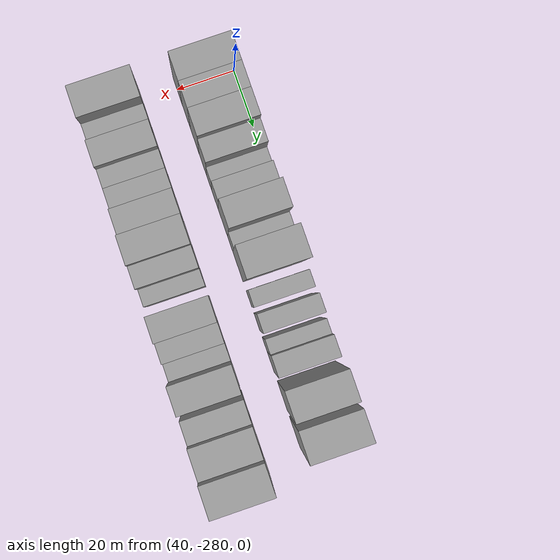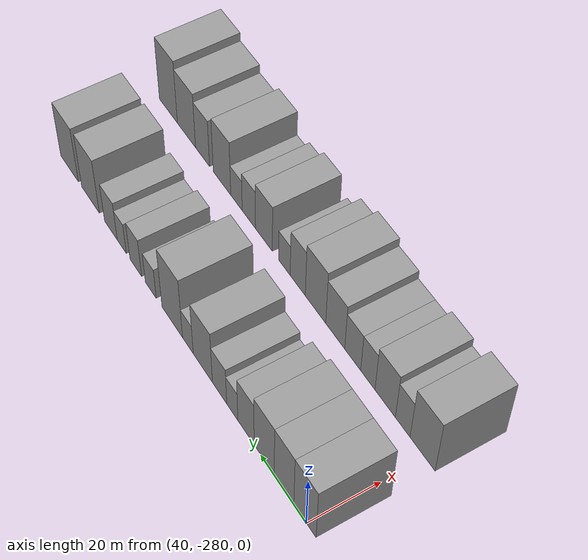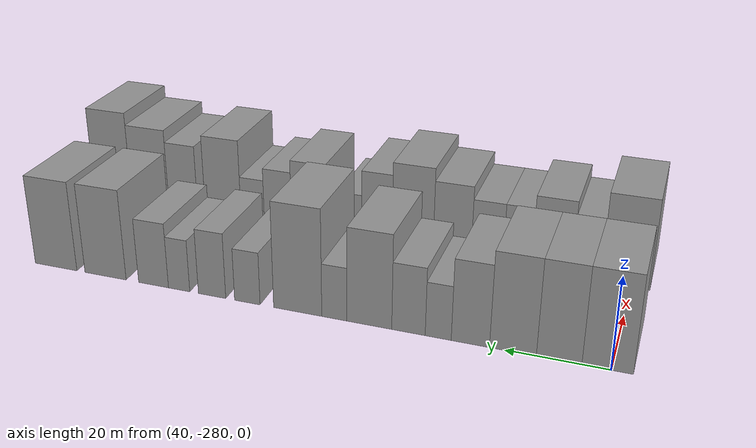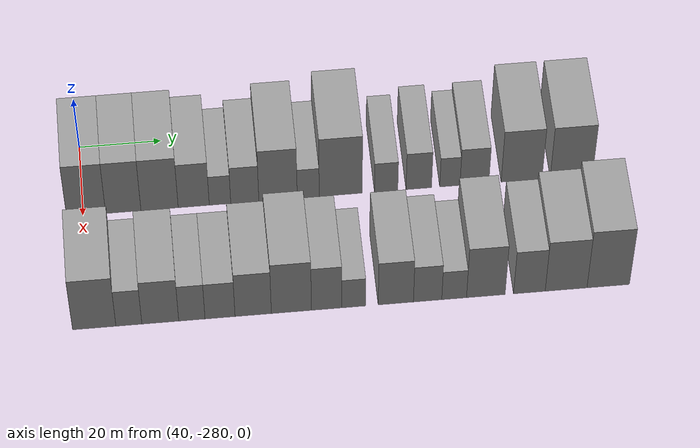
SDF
<sdf version="1.6">
 <world name="default">
  <model name="building_1">
   <static>1</static>
   <pose>50.0000 -279.2888 0 0.000000 0.000000 0.000000</pose>
   <link name="link">
    <pose>0 0 10.50 0 0 0</pose>
    <collision name="collision"><geometry><box><size>20.0000 9.4225 21.0000</size></box></geometry></collision>
    <visual name="visual">
     <cast_shadows>0</cast_shadows>
     <geometry><box><size>20.0000 9.4225 21.0000</size></box></geometry>
     <material>
      <script>
       <uri>model://grey_wall/materials/scripts</uri>
       <uri>model://grey_wall/materials/textures</uri>
       <name>vrc/grey_wall</name>
      </script>
     </material>
    </visual>
   </link>
  </model>
  <model name="building_2">
   <static>1</static>
   <pose>50.0000 -270.3135 0 0.000000 0.000000 0.000000</pose>
   <link name="link">
    <pose>0 0 10.50 0 0 0</pose>
    <collision name="collision"><geometry><box><size>20.0000 8.5280 21.0000</size></box></geometry></collision>
    <visual name="visual">
     <cast_shadows>0</cast_shadows>
     <geometry><box><size>20.0000 8.5280 21.0000</size></box></geometry>
     <material>
      <script>
       <uri>model://grey_wall/materials/scripts</uri>
       <uri>model://grey_wall/materials/textures</uri>
       <name>vrc/grey_wall</name>
      </script>
     </material>
    </visual>
   </link>
  </model>
  <model name="building_3">
   <static>1</static>
   <pose>50.0000 -261.5503 0 0.000000 0.000000 0.000000</pose>
   <link name="link">
    <pose>0 0 10.50 0 0 0</pose>
    <collision name="collision"><geometry><box><size>20.0000 8.9983 21.0000</size></box></geometry></collision>
    <visual name="visual">
     <cast_shadows>0</cast_shadows>
     <geometry><box><size>20.0000 8.9983 21.0000</size></box></geometry>
     <material>
      <script>
       <uri>model://grey_wall/materials/scripts</uri>
       <uri>model://grey_wall/materials/textures</uri>
       <name>vrc/grey_wall</name>
      </script>
     </material>
    </visual>
   </link>
  </model>
  <model name="building_4">
   <static>1</static>
   <pose>50.0000 -253.2903 0 0.000000 0.000000 0.000000</pose>
   <link name="link">
    <pose>0 0 9.00 0 0 0</pose>
    <collision name="collision"><geometry><box><size>20.0000 7.5218 18.0000</size></box></geometry></collision>
    <visual name="visual">
     <cast_shadows>0</cast_shadows>
     <geometry><box><size>20.0000 7.5218 18.0000</size></box></geometry>
     <material>
      <script>
       <uri>model://grey_wall/materials/scripts</uri>
       <uri>model://grey_wall/materials/textures</uri>
       <name>vrc/grey_wall</name>
      </script>
     </material>
    </visual>
   </link>
  </model>
  <model name="building_5">
   <static>1</static>
   <pose>50.0000 -246.9302 0 0.000000 0.000000 0.000000</pose>
   <link name="link">
    <pose>0 0 6.00 0 0 0</pose>
    <collision name="collision"><geometry><box><size>20.0000 5.1983 12.0000</size></box></geometry></collision>
    <visual name="visual">
     <cast_shadows>0</cast_shadows>
     <geometry><box><size>20.0000 5.1983 12.0000</size></box></geometry>
     <material>
      <script>
       <uri>model://grey_wall/materials/scripts</uri>
       <uri>model://grey_wall/materials/textures</uri>
       <name>vrc/grey_wall</name>
      </script>
     </material>
    </visual>
   </link>
  </model>
  <model name="building_6">
   <static>1</static>
   <pose>50.0000 -240.9250 0 0.000000 0.000000 0.000000</pose>
   <link name="link">
    <pose>0 0 7.50 0 0 0</pose>
    <collision name="collision"><geometry><box><size>20.0000 6.8121 15.0000</size></box></geometry></collision>
    <visual name="visual">
     <cast_shadows>0</cast_shadows>
     <geometry><box><size>20.0000 6.8121 15.0000</size></box></geometry>
     <material>
      <script>
       <uri>model://grey_wall/materials/scripts</uri>
       <uri>model://grey_wall/materials/textures</uri>
       <name>vrc/grey_wall</name>
      </script>
     </material>
    </visual>
   </link>
  </model>
  <model name="building_7">
   <static>1</static>
   <pose>50.0000 -232.8600 0 0.000000 0.000000 0.000000</pose>
   <link name="link">
    <pose>0 0 10.50 0 0 0</pose>
    <collision name="collision"><geometry><box><size>20.0000 9.3180 21.0000</size></box></geometry></collision>
    <visual name="visual">
     <cast_shadows>0</cast_shadows>
     <geometry><box><size>20.0000 9.3180 21.0000</size></box></geometry>
     <material>
      <script>
       <uri>model://grey_wall/materials/scripts</uri>
       <uri>model://grey_wall/materials/textures</uri>
       <name>vrc/grey_wall</name>
      </script>
     </material>
    </visual>
   </link>
  </model>
  <model name="building_8">
   <static>1</static>
   <pose>50.0000 -225.5299 0 0.000000 0.000000 0.000000</pose>
   <link name="link">
    <pose>0 0 6.00 0 0 0</pose>
    <collision name="collision"><geometry><box><size>20.0000 5.3421 12.0000</size></box></geometry></collision>
    <visual name="visual">
     <cast_shadows>0</cast_shadows>
     <geometry><box><size>20.0000 5.3421 12.0000</size></box></geometry>
     <material>
      <script>
       <uri>model://grey_wall/materials/scripts</uri>
       <uri>model://grey_wall/materials/textures</uri>
       <name>vrc/grey_wall</name>
      </script>
     </material>
    </visual>
   </link>
  </model>
  <model name="building_9">
   <static>1</static>
   <pose>50.0000 -217.6387 0 0.000000 0.000000 0.000000</pose>
   <link name="link">
    <pose>0 0 12.00 0 0 0</pose>
    <collision name="collision"><geometry><box><size>20.0000 10.4403 24.0000</size></box></geometry></collision>
    <visual name="visual">
     <cast_shadows>0</cast_shadows>
     <geometry><box><size>20.0000 10.4403 24.0000</size></box></geometry>
     <material>
      <script>
       <uri>model://grey_wall/materials/scripts</uri>
       <uri>model://grey_wall/materials/textures</uri>
       <name>vrc/grey_wall</name>
      </script>
     </material>
    </visual>
   </link>
  </model>
  <model name="building_10">
   <static>1</static>
   <pose>50.0000 -206.5771 0 0.000000 0.000000 0.000000</pose>
   <link name="link">
    <pose>0 0 6.00 0 0 0</pose>
    <collision name="collision"><geometry><box><size>20.0000 5.6830 12.0000</size></box></geometry></collision>
    <visual name="visual">
     <cast_shadows>0</cast_shadows>
     <geometry><box><size>20.0000 5.6830 12.0000</size></box></geometry>
     <material>
      <script>
       <uri>model://grey_wall/materials/scripts</uri>
       <uri>model://grey_wall/materials/textures</uri>
       <name>vrc/grey_wall</name>
      </script>
     </material>
    </visual>
   </link>
  </model>
  <model name="building_11">
   <static>1</static>
   <pose>50.0000 -198.6190 0 0.000000 0.000000 0.000000</pose>
   <link name="link">
    <pose>0 0 7.50 0 0 0</pose>
    <collision name="collision"><geometry><box><size>20.0000 6.2331 15.0000</size></box></geometry></collision>
    <visual name="visual">
     <cast_shadows>0</cast_shadows>
     <geometry><box><size>20.0000 6.2331 15.0000</size></box></geometry>
     <material>
      <script>
       <uri>model://grey_wall/materials/scripts</uri>
       <uri>model://grey_wall/materials/textures</uri>
       <name>vrc/grey_wall</name>
      </script>
     </material>
    </visual>
   </link>
  </model>
  <model name="building_12">
   <static>1</static>
   <pose>50.0000 -191.0280 0 0.000000 0.000000 0.000000</pose>
   <link name="link">
    <pose>0 0 6.00 0 0 0</pose>
    <collision name="collision"><geometry><box><size>20.0000 4.9491 12.0000</size></box></geometry></collision>
    <visual name="visual">
     <cast_shadows>0</cast_shadows>
     <geometry><box><size>20.0000 4.9491 12.0000</size></box></geometry>
     <material>
      <script>
       <uri>model://grey_wall/materials/scripts</uri>
       <uri>model://grey_wall/materials/textures</uri>
       <name>vrc/grey_wall</name>
      </script>
     </material>
    </visual>
   </link>
  </model>
  <model name="building_13">
   <static>1</static>
   <pose>50.0000 -185.0274 0 0.000000 0.000000 0.000000</pose>
   <link name="link">
    <pose>0 0 7.50 0 0 0</pose>
    <collision name="collision"><geometry><box><size>20.0000 7.0521 15.0000</size></box></geometry></collision>
    <visual name="visual">
     <cast_shadows>0</cast_shadows>
     <geometry><box><size>20.0000 7.0521 15.0000</size></box></geometry>
     <material>
      <script>
       <uri>model://grey_wall/materials/scripts</uri>
       <uri>model://grey_wall/materials/textures</uri>
       <name>vrc/grey_wall</name>
      </script>
     </material>
    </visual>
   </link>
  </model>
  <model name="building_14">
   <static>1</static>
   <pose>50.0000 -173.4925 0 0.000000 0.000000 0.000000</pose>
   <link name="link">
    <pose>0 0 10.50 0 0 0</pose>
    <collision name="collision"><geometry><box><size>20.0000 10.0176 21.0000</size></box></geometry></collision>
    <visual name="visual">
     <cast_shadows>0</cast_shadows>
     <geometry><box><size>20.0000 10.0176 21.0000</size></box></geometry>
     <material>
      <script>
       <uri>model://grey_wall/materials/scripts</uri>
       <uri>model://grey_wall/materials/textures</uri>
       <name>vrc/grey_wall</name>
      </script>
     </material>
    </visual>
   </link>
  </model>
  <model name="building_15">
   <static>1</static>
   <pose>50.0000 -161.2833 0 0.000000 0.000000 0.000000</pose>
   <link name="link">
    <pose>0 0 10.50 0 0 0</pose>
    <collision name="collision"><geometry><box><size>20.0000 10.4008 21.0000</size></box></geometry></collision>
    <visual name="visual">
     <cast_shadows>0</cast_shadows>
     <geometry><box><size>20.0000 10.4008 21.0000</size></box></geometry>
     <material>
      <script>
       <uri>model://grey_wall/materials/scripts</uri>
       <uri>model://grey_wall/materials/textures</uri>
       <name>vrc/grey_wall</name>
      </script>
     </material>
    </visual>
   </link>
  </model>
  <model name="building_65">
   <static>1</static>
   <pose>82.0000 -278.9010 0 0.000000 0.000000 0.000000</pose>
   <link name="link">
    <pose>0 0 10.50 0 0 0</pose>
    <collision name="collision"><geometry><box><size>20.0000 10.1979 21.0000</size></box></geometry></collision>
    <visual name="visual">
     <cast_shadows>0</cast_shadows>
     <geometry><box><size>20.0000 10.1979 21.0000</size></box></geometry>
     <material>
      <script>
       <uri>model://grey_wall/materials/scripts</uri>
       <uri>model://grey_wall/materials/textures</uri>
       <name>vrc/grey_wall</name>
      </script>
     </material>
    </visual>
   </link>
  </model>
  <model name="building_66">
   <static>1</static>
   <pose>82.0000 -270.7452 0 0.000000 0.000000 0.000000</pose>
   <link name="link">
    <pose>0 0 7.50 0 0 0</pose>
    <collision name="collision"><geometry><box><size>20.0000 6.1138 15.0000</size></box></geometry></collision>
    <visual name="visual">
     <cast_shadows>0</cast_shadows>
     <geometry><box><size>20.0000 6.1138 15.0000</size></box></geometry>
     <material>
      <script>
       <uri>model://grey_wall/materials/scripts</uri>
       <uri>model://grey_wall/materials/textures</uri>
       <name>vrc/grey_wall</name>
      </script>
     </material>
    </visual>
   </link>
  </model>
  <model name="building_67">
   <static>1</static>
   <pose>82.0000 -263.3464 0 0.000000 0.000000 0.000000</pose>
   <link name="link">
    <pose>0 0 9.00 0 0 0</pose>
    <collision name="collision"><geometry><box><size>20.0000 8.6838 18.0000</size></box></geometry></collision>
    <visual name="visual">
     <cast_shadows>0</cast_shadows>
     <geometry><box><size>20.0000 8.6838 18.0000</size></box></geometry>
     <material>
      <script>
       <uri>model://grey_wall/materials/scripts</uri>
       <uri>model://grey_wall/materials/textures</uri>
       <name>vrc/grey_wall</name>
      </script>
     </material>
    </visual>
   </link>
  </model>
  <model name="building_68">
   <static>1</static>
   <pose>82.0000 -255.9029 0 0.000000 0.000000 0.000000</pose>
   <link name="link">
    <pose>0 0 7.50 0 0 0</pose>
    <collision name="collision"><geometry><box><size>20.0000 6.2032 15.0000</size></box></geometry></collision>
    <visual name="visual">
     <cast_shadows>0</cast_shadows>
     <geometry><box><size>20.0000 6.2032 15.0000</size></box></geometry>
     <material>
      <script>
       <uri>model://grey_wall/materials/scripts</uri>
       <uri>model://grey_wall/materials/textures</uri>
       <name>vrc/grey_wall</name>
      </script>
     </material>
    </visual>
   </link>
  </model>
  <model name="building_69">
   <static>1</static>
   <pose>82.0000 -249.2549 0 0.000000 0.000000 0.000000</pose>
   <link name="link">
    <pose>0 0 7.50 0 0 0</pose>
    <collision name="collision"><geometry><box><size>20.0000 7.0929 15.0000</size></box></geometry></collision>
    <visual name="visual">
     <cast_shadows>0</cast_shadows>
     <geometry><box><size>20.0000 7.0929 15.0000</size></box></geometry>
     <material>
      <script>
       <uri>model://grey_wall/materials/scripts</uri>
       <uri>model://grey_wall/materials/textures</uri>
       <name>vrc/grey_wall</name>
      </script>
     </material>
    </visual>
   </link>
  </model>
  <model name="building_70">
   <static>1</static>
   <pose>82.0000 -241.4138 0 0.000000 0.000000 0.000000</pose>
   <link name="link">
    <pose>0 0 9.00 0 0 0</pose>
    <collision name="collision"><geometry><box><size>20.0000 8.5894 18.0000</size></box></geometry></collision>
    <visual name="visual">
     <cast_shadows>0</cast_shadows>
     <geometry><box><size>20.0000 8.5894 18.0000</size></box></geometry>
     <material>
      <script>
       <uri>model://grey_wall/materials/scripts</uri>
       <uri>model://grey_wall/materials/textures</uri>
       <name>vrc/grey_wall</name>
      </script>
     </material>
    </visual>
   </link>
  </model>
  <model name="building_71">
   <static>1</static>
   <pose>82.0000 -232.3743 0 0.000000 0.000000 0.000000</pose>
   <link name="link">
    <pose>0 0 10.50 0 0 0</pose>
    <collision name="collision"><geometry><box><size>20.0000 9.4895 21.0000</size></box></geometry></collision>
    <visual name="visual">
     <cast_shadows>0</cast_shadows>
     <geometry><box><size>20.0000 9.4895 21.0000</size></box></geometry>
     <material>
      <script>
       <uri>model://grey_wall/materials/scripts</uri>
       <uri>model://grey_wall/materials/textures</uri>
       <name>vrc/grey_wall</name>
      </script>
     </material>
    </visual>
   </link>
  </model>
  <model name="building_72">
   <static>1</static>
   <pose>82.0000 -224.0270 0 0.000000 0.000000 0.000000</pose>
   <link name="link">
    <pose>0 0 9.00 0 0 0</pose>
    <collision name="collision"><geometry><box><size>20.0000 7.2051 18.0000</size></box></geometry></collision>
    <visual name="visual">
     <cast_shadows>0</cast_shadows>
     <geometry><box><size>20.0000 7.2051 18.0000</size></box></geometry>
     <material>
      <script>
       <uri>model://grey_wall/materials/scripts</uri>
       <uri>model://grey_wall/materials/textures</uri>
       <name>vrc/grey_wall</name>
      </script>
     </material>
    </visual>
   </link>
  </model>
  <model name="building_73">
   <static>1</static>
   <pose>82.0000 -217.6118 0 0.000000 0.000000 0.000000</pose>
   <link name="link">
    <pose>0 0 6.00 0 0 0</pose>
    <collision name="collision"><geometry><box><size>20.0000 5.6252 12.0000</size></box></geometry></collision>
    <visual name="visual">
     <cast_shadows>0</cast_shadows>
     <geometry><box><size>20.0000 5.6252 12.0000</size></box></geometry>
     <material>
      <script>
       <uri>model://grey_wall/materials/scripts</uri>
       <uri>model://grey_wall/materials/textures</uri>
       <name>vrc/grey_wall</name>
      </script>
     </material>
    </visual>
   </link>
  </model>
  <model name="building_74">
   <static>1</static>
   <pose>82.0000 -207.6073 0 0.000000 0.000000 0.000000</pose>
   <link name="link">
    <pose>0 0 9.00 0 0 0</pose>
    <collision name="collision"><geometry><box><size>20.0000 8.3838 18.0000</size></box></geometry></collision>
    <visual name="visual">
     <cast_shadows>0</cast_shadows>
     <geometry><box><size>20.0000 8.3838 18.0000</size></box></geometry>
     <material>
      <script>
       <uri>model://grey_wall/materials/scripts</uri>
       <uri>model://grey_wall/materials/textures</uri>
       <name>vrc/grey_wall</name>
      </script>
     </material>
    </visual>
   </link>
  </model>
  <model name="building_75">
   <static>1</static>
   <pose>82.0000 -200.0405 0 0.000000 0.000000 0.000000</pose>
   <link name="link">
    <pose>0 0 7.50 0 0 0</pose>
    <collision name="collision"><geometry><box><size>20.0000 6.7497 15.0000</size></box></geometry></collision>
    <visual name="visual">
     <cast_shadows>0</cast_shadows>
     <geometry><box><size>20.0000 6.7497 15.0000</size></box></geometry>
     <material>
      <script>
       <uri>model://grey_wall/materials/scripts</uri>
       <uri>model://grey_wall/materials/textures</uri>
       <name>vrc/grey_wall</name>
      </script>
     </material>
    </visual>
   </link>
  </model>
  <model name="building_76">
   <static>1</static>
   <pose>82.0000 -193.7160 0 0.000000 0.000000 0.000000</pose>
   <link name="link">
    <pose>0 0 6.00 0 0 0</pose>
    <collision name="collision"><geometry><box><size>20.0000 5.8993 12.0000</size></box></geometry></collision>
    <visual name="visual">
     <cast_shadows>0</cast_shadows>
     <geometry><box><size>20.0000 5.8993 12.0000</size></box></geometry>
     <material>
      <script>
       <uri>model://grey_wall/materials/scripts</uri>
       <uri>model://grey_wall/materials/textures</uri>
       <name>vrc/grey_wall</name>
      </script>
     </material>
    </visual>
   </link>
  </model>
  <model name="building_77">
   <static>1</static>
   <pose>82.0000 -186.1681 0 0.000000 0.000000 0.000000</pose>
   <link name="link">
    <pose>0 0 10.50 0 0 0</pose>
    <collision name="collision"><geometry><box><size>20.0000 9.1965 21.0000</size></box></geometry></collision>
    <visual name="visual">
     <cast_shadows>0</cast_shadows>
     <geometry><box><size>20.0000 9.1965 21.0000</size></box></geometry>
     <material>
      <script>
       <uri>model://grey_wall/materials/scripts</uri>
       <uri>model://grey_wall/materials/textures</uri>
       <name>vrc/grey_wall</name>
      </script>
     </material>
    </visual>
   </link>
  </model>
  <model name="building_78">
   <static>1</static>
   <pose>82.0000 -175.7864 0 0.000000 0.000000 0.000000</pose>
   <link name="link">
    <pose>0 0 9.00 0 0 0</pose>
    <collision name="collision"><geometry><box><size>20.0000 7.5670 18.0000</size></box></geometry></collision>
    <visual name="visual">
     <cast_shadows>0</cast_shadows>
     <geometry><box><size>20.0000 7.5670 18.0000</size></box></geometry>
     <material>
      <script>
       <uri>model://grey_wall/materials/scripts</uri>
       <uri>model://grey_wall/materials/textures</uri>
       <name>vrc/grey_wall</name>
      </script>
     </material>
    </visual>
   </link>
  </model>
  <model name="building_79">
   <static>1</static>
   <pose>82.0000 -167.0020 0 0.000000 0.000000 0.000000</pose>
   <link name="link">
    <pose>0 0 10.50 0 0 0</pose>
    <collision name="collision"><geometry><box><size>20.0000 10.0018 21.0000</size></box></geometry></collision>
    <visual name="visual">
     <cast_shadows>0</cast_shadows>
     <geometry><box><size>20.0000 10.0018 21.0000</size></box></geometry>
     <material>
      <script>
       <uri>model://grey_wall/materials/scripts</uri>
       <uri>model://grey_wall/materials/textures</uri>
       <name>vrc/grey_wall</name>
      </script>
     </material>
    </visual>
   </link>
  </model>
  <model name="building_80">
   <static>1</static>
   <pose>82.0000 -156.9171 0 0.000000 0.000000 0.000000</pose>
   <link name="link">
    <pose>0 0 12.00 0 0 0</pose>
    <collision name="collision"><geometry><box><size>20.0000 10.1681 24.0000</size></box></geometry></collision>
    <visual name="visual">
     <cast_shadows>0</cast_shadows>
     <geometry><box><size>20.0000 10.1681 24.0000</size></box></geometry>
     <material>
      <script>
       <uri>model://grey_wall/materials/scripts</uri>
       <uri>model://grey_wall/materials/textures</uri>
       <name>vrc/grey_wall</name>
      </script>
     </material>
    </visual>
   </link>
  </model>
 </world>
</sdf>
